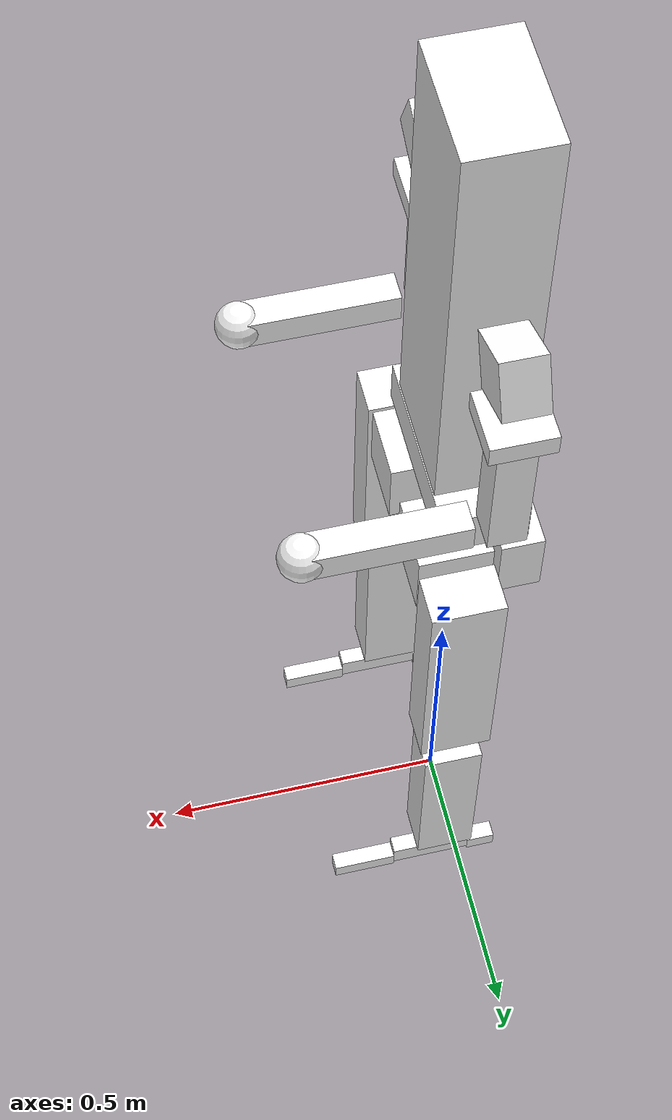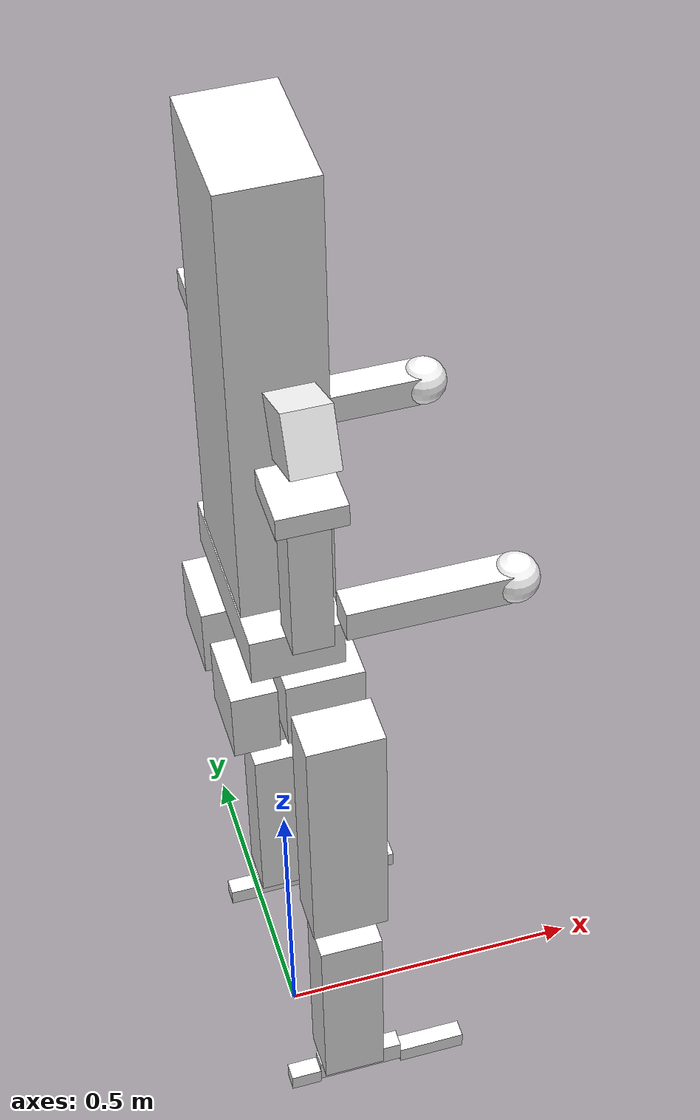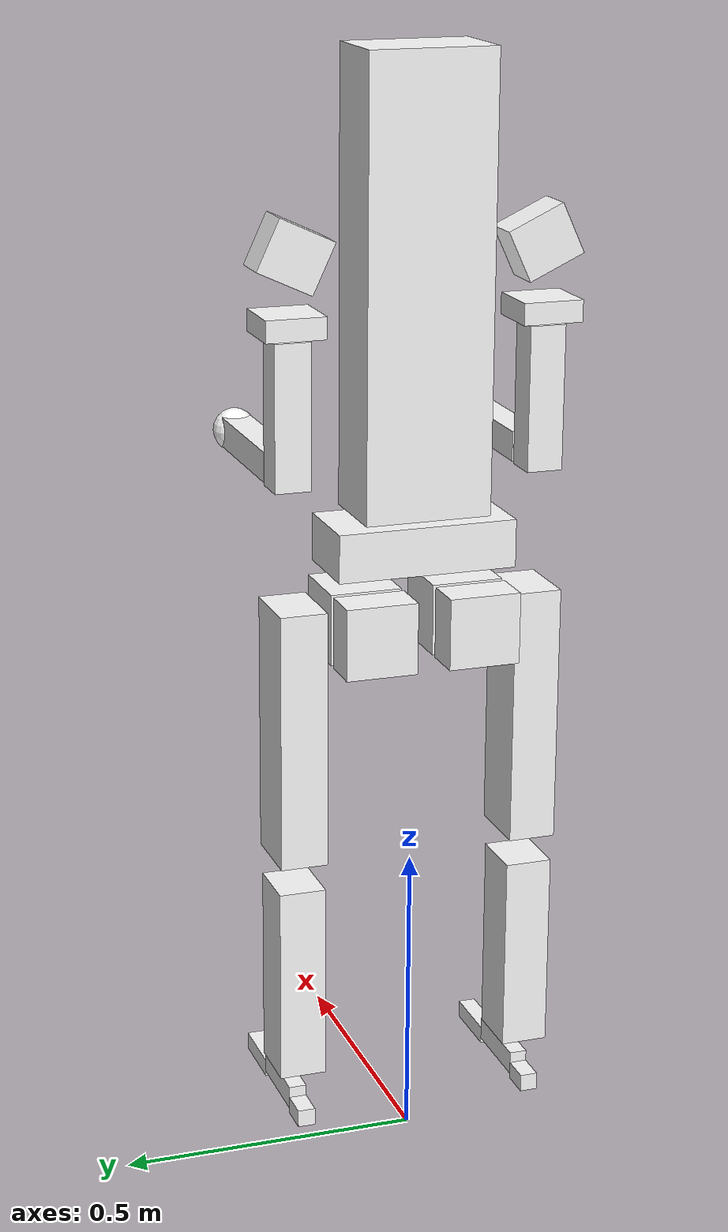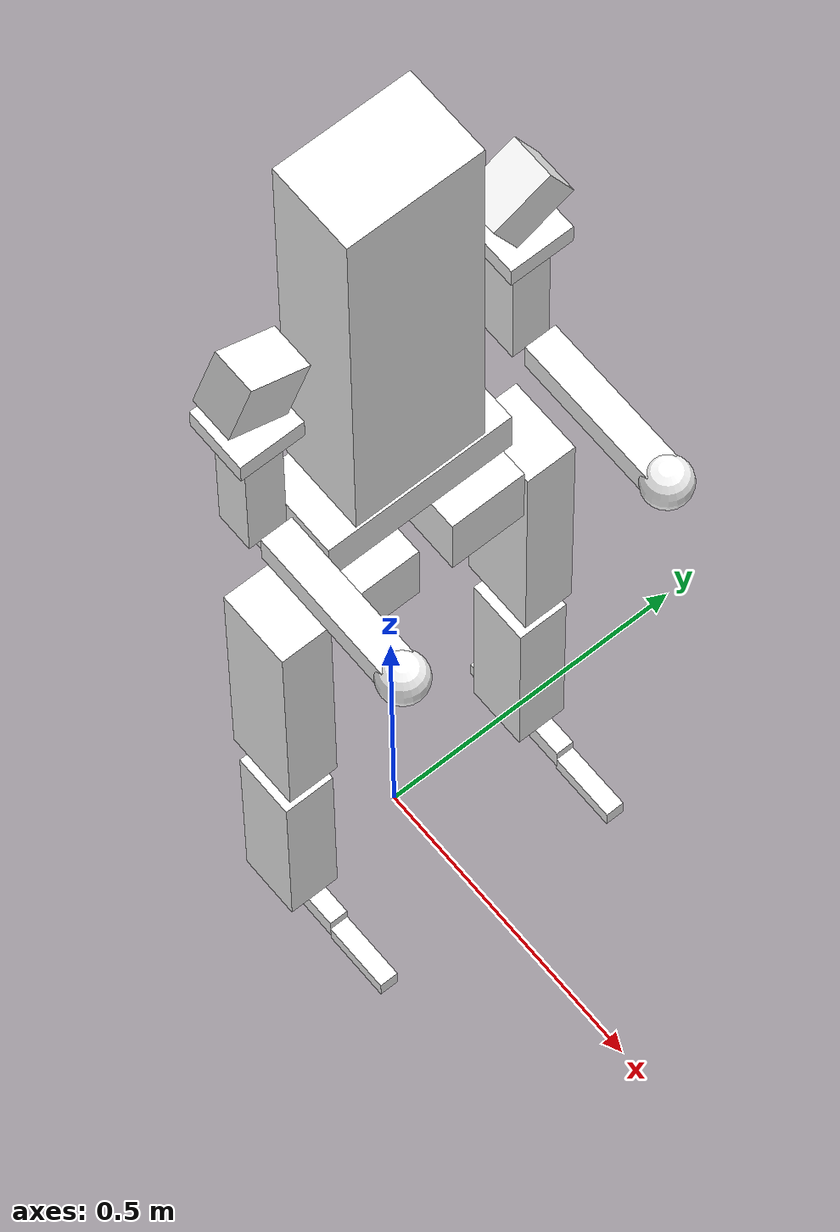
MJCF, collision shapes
<mujoco model="h1">
  <compiler angle="radian" meshdir="assets" autolimits="true"/>

  <default>
    <default class="h1">
      <geom type="mesh"/>
      <joint damping="1" armature="0.1"/>
      <default class="visual">
        <geom contype="0" conaffinity="0" group="2" material="black"/>
      </default>
      <default class="collision">
        <geom group="3" mass="0" density="0" rgba="1 1 1 0.2"/>
      </default>
      <site size="0.001" rgba="0.5 0.5 0.5 0.3" group="4"/>
    </default>
  </default>

  <asset>
    <material name="black" rgba="0.1 0.1 0.1 1"/>
    <material name="white" rgba="1 1 1 1"/>

    <mesh file="pelvis.STL"/>
    <mesh file="left_hip_yaw_link.STL"/>
    <mesh file="left_hip_roll_link.STL"/>
    <mesh file="left_hip_pitch_link.STL"/>
    <mesh file="left_knee_link.STL"/>
    <mesh file="left_ankle_link.STL"/>
    <mesh file="right_hip_yaw_link.STL"/>
    <mesh file="right_hip_roll_link.STL"/>
    <mesh file="right_hip_pitch_link.STL"/>
    <mesh file="right_knee_link.STL"/>
    <mesh file="right_ankle_link.STL"/>
    <mesh file="torso_link.STL"/>
    <mesh file="left_shoulder_pitch_link.STL"/>
    <mesh file="left_shoulder_roll_link.STL"/>
    <mesh file="left_shoulder_yaw_link.STL"/>
    <mesh file="left_elbow_link_ball_hand.STL"/>
    <mesh file="right_shoulder_pitch_link.STL"/>
    <mesh file="right_shoulder_roll_link.STL"/>
    <mesh file="right_shoulder_yaw_link.STL"/>
    <mesh file="right_elbow_link_ball_hand.STL"/>
    <mesh file="logo_link.STL"/>
  </asset>

  <worldbody>
    <body name="pelvis" pos="0 0 1.1" childclass="h1">
      <inertial pos="-0.0002 4e-05 -0.04522" quat="0.498303 0.499454 -0.500496 0.501741" mass="5.39"
        diaginertia="0.0490211 0.0445821 0.00824619"/>
      <freejoint/>
      <geom class="visual" mesh="pelvis"/>
      <geom name="pelvis_collision" pos="0 0 -0.04" type="box" size="0.07 0.15 0.04" class="collision"/>
      <body name="left_hip_yaw_link" pos="0 0.0875 -0.1742">
        <inertial pos="-0.04923 0.0001 0.0072" quat="0.69699 0.219193 0.233287 0.641667" mass="2.244"
          diaginertia="0.00304494 0.00296885 0.00189201"/>
        <joint name="left_hip_yaw_joint" axis="0 0 1" range="-0.43 0.43"/>
        <geom class="visual" mesh="left_hip_yaw_link"/>
        <geom name="left_hip_yaw_link_collision" size="0.035 0.06 0.06" pos="-0.067 0 0" type="box" class="collision"/>
        <body name="left_hip_roll_link" pos="0.039468 0 0">
          <inertial pos="-0.0058 -0.00319 -9e-05" quat="0.0438242 0.70721 -0.0729075 0.701867" mass="2.232"
            diaginertia="0.00243264 0.00225325 0.00205492"/>
          <joint name="left_hip_roll_joint" axis="1 0 0" range="-0.43 0.43"/>
          <geom class="visual" mesh="left_hip_roll_link"/>
          <geom name="left_hip_roll_link_collision" size="0.06 0.06 0.06" type="box" class="collision"/>
          <body name="left_hip_pitch_link" pos="0 0.11536 0">
            <inertial pos="0.00746 -0.02346 -0.08193" quat="0.979828 0.0513522 -0.0169854 -0.192382" mass="4.152"
              diaginertia="0.0829503 0.0821457 0.00510909"/>
            <joint name="left_hip_pitch_joint" axis="0 1 0" range="-3.14 2.53"/>
            <geom class="visual" mesh="left_hip_pitch_link"/>
            <geom name="left_hip_pitch_link_collision" pos="0 -0.01 -0.19" size="0.06 0.04 0.22" type="box" class="collision"/>
            <body name="left_knee_link" pos="0 0 -0.4">
              <inertial pos="-0.00136 -0.00512 -0.1384" quat="0.626132 -0.034227 -0.0416277 0.777852" mass="1.721"
                diaginertia="0.0125237 0.0123104 0.0019428"/>
              <joint name="left_knee_joint" axis="0 1 0" range="-0.26 2.05"/>
              <geom class="visual" mesh="left_knee_link"/>
              <geom name="left_knee_link_collision" pos="0 -0.01 -0.23" size="0.05 0.04 0.17" type="box" class="collision"/>
              <body name="left_ankle_link" pos="0 0 -0.4">
                <inertial pos="0.048568 0 -0.045609" quat="0.489385 0.510394 0.510394 0.489385" mass="0.552448"
                  diaginertia="0.00362 0.00355701 0.000149987"/>
                <joint name="left_ankle_joint" axis="0 1 0" range="-0.87 0.52"/>
                <geom class="visual" mesh="left_ankle_link"/>
                <geom name="left_ankle_link_collision_1" pos="0.145 0 -0.0538" size="0.055 0.0148 0.015" type="box" class="collision"/>
                <geom name="left_ankle_link_collision_2" pos="0.02015 0 -0.04" size="0.06985 0.0148 0.02" type="box" class="collision"/>
                <geom name="left_ankle_link_collision_3" pos="-0.0747 0 -0.0538" size="0.025 0.0148 0.015" type="box" class="collision"/>
              </body>
            </body>
          </body>
        </body>
      </body>
      <body name="right_hip_yaw_link" pos="0 -0.0875 -0.1742">
        <inertial pos="-0.04923 -0.0001 0.0072" quat="0.641667 0.233287 0.219193 0.69699" mass="2.244"
          diaginertia="0.00304494 0.00296885 0.00189201"/>
        <joint name="right_hip_yaw_joint" axis="0 0 1" range="-0.43 0.43"/>
        <geom class="visual" mesh="right_hip_yaw_link"/>
        <geom name="right_hip_yaw_link_collision" size="0.035 0.06 0.06" pos="-0.067 0 0" type="box" class="collision"/>
        <body name="right_hip_roll_link" pos="0.039468 0 0">
          <inertial pos="-0.0058 0.00319 -9e-05" quat="-0.0438242 0.70721 0.0729075 0.701867" mass="2.232"
            diaginertia="0.00243264 0.00225325 0.00205492"/>
          <joint name="right_hip_roll_joint" axis="1 0 0" range="-0.43 0.43"/>
          <geom class="visual" mesh="right_hip_roll_link"/>
          <geom name="right_hip_roll_link_collision" size="0.06 0.06 0.06" type="box" class="collision"/>
          <body name="right_hip_pitch_link" pos="0 -0.11536 0">
            <inertial pos="0.00746 0.02346 -0.08193" quat="0.979828 -0.0513522 -0.0169854 0.192382" mass="4.152"
              diaginertia="0.0829503 0.0821457 0.00510909"/>
            <joint name="right_hip_pitch_joint" axis="0 1 0" range="-3.14 2.53"/>
            <geom class="visual" mesh="right_hip_pitch_link"/>
            <geom name="right_hip_pitch_link_collision" pos="0 -0.01 -0.19" size="0.06 0.04 0.22" type="box" class="collision"/>
            <body name="right_knee_link" pos="0 0 -0.4">
              <inertial pos="-0.00136 0.00512 -0.1384" quat="0.777852 -0.0416277 -0.034227 0.626132" mass="1.721"
                diaginertia="0.0125237 0.0123104 0.0019428"/>
              <joint name="right_knee_joint" axis="0 1 0" range="-0.26 2.05"/>
              <geom class="visual" mesh="right_knee_link"/>
              <geom name="right_knee_link_collision" pos="0 -0.01 -0.23" size="0.05 0.04 0.17" type="box" class="collision"/>
              <body name="right_ankle_link" pos="0 0 -0.4">
                <inertial pos="0.048568 0 -0.045609" quat="0.489385 0.510394 0.510394 0.489385" mass="0.552448"
                  diaginertia="0.00362 0.00355701 0.000149987"/>
                <joint name="right_ankle_joint" axis="0 1 0" range="-0.87 0.52"/>
                <geom class="visual" mesh="right_ankle_link"/>
                <geom name="right_ankle_link_collision_1" pos="0.145 0 -0.0538" size="0.055 0.0148 0.015" type="box" class="collision"/>
                <geom name="right_ankle_link_collision_2" pos="0.02015 0 -0.04" size="0.06985 0.0148 0.02" type="box" class="collision"/>
                <geom name="right_ankle_link_collision_3" pos="-0.0747 0 -0.0538" size="0.025 0.0148 0.015" type="box" class="collision"/>
              </body>
            </body>
          </body>
        </body>
      </body>
      <body name="torso_link">
        <inertial pos="0.000489 0.002797 0.20484" quat="0.999989 -0.00130808 -0.00282289 -0.00349105" mass="17.789"
          diaginertia="0.487315 0.409628 0.127837"/>
        <joint name="torso_joint" axis="0 0 1" range="-2.35 2.35"/>
        <geom class="visual" mesh="torso_link"/>
        <geom class="visual" material="white" mesh="logo_link"/>
        <geom name="torso_link_collision" pos="0 0 0.38" size="0.07 0.105 0.37" type="box" class="collision"/>
        <site name="imu" size="0.01" pos="-0.04452 -0.01891 0.27756"/>
        <body name="left_shoulder_pitch_link" pos="0.0055 0.15535 0.42999" quat="0.976296 0.216438 0 0">
          <inertial pos="0.005045 0.053657 -0.015715" quat="0.814858 0.579236 -0.0201072 -0.00936488" mass="1.033"
            diaginertia="0.00129936 0.000987113 0.000858198"/>
          <joint name="left_shoulder_pitch_joint" axis="0 1 0" range="-2.87 2.87"/>
          <geom class="visual" mesh="left_shoulder_pitch_link"/>
          <geom name="left_shoulder_pitch_link_collision" pos="0 0.05 -0.015" size="0.035 0.05 0.045" type="box" class="collision"/>
          <body name="left_shoulder_roll_link" pos="-0.0055 0.0565 -0.0165" quat="0.976296 -0.216438 0 0">
            <inertial pos="0.000679 0.00115 -0.094076" quat="0.732491 0.00917179 0.0766656 0.676384" mass="0.793"
              diaginertia="0.00170388 0.00158256 0.00100336"/>
            <joint name="left_shoulder_roll_joint" axis="1 0 0" range="-0.34 3.11"/>
            <geom class="visual" mesh="left_shoulder_roll_link"/>
            <geom name="left_shoulder_roll_link_collision" pos="0 0 -0.11" size="0.05 0.05 0.018" type="box" class="collision"/>
            <body name="left_shoulder_yaw_link" pos="0 0 -0.1343">
              <inertial pos="0.01365 0.002767 -0.16266" quat="0.703042 -0.0331229 -0.0473362 0.708798" mass="0.839"
                diaginertia="0.00408038 0.00370367 0.000622687"/>
              <joint name="left_shoulder_yaw_joint" axis="0 0 1" range="-1.3 4.45"/>
              <geom class="visual" mesh="left_shoulder_yaw_link"/>
              <geom name="left_shoulder_yaw_link_collision" pos="0 0 -0.12" size="0.03 0.03 0.12" type="box" class="collision"/>
              <body name="left_elbow_link_ball_hand" pos="0.0185 0 -0.198">
                <inertial pos="0.15908 -0.000144 -0.015776" quat="0.0765232 0.720327 0.0853116 0.684102" mass="0.669"
                  diaginertia="0.00601829 0.00600579 0.000408305"/>
                <joint name="left_elbow_joint" axis="0 1 0" range="-1.25 2.61"/>
                <geom class="visual" mesh="left_elbow_link_ball_hand"/>
                <geom name="left_elbow_link_ball_hand_collision_1" pos="0.15 0 -0.018" size="0.12 0.025 0.025" type="box" class="collision"/>
                <geom name="left_elbow_link_ball_hand_collision_2" pos="0.28 0 -0.018" size="0.0365" type="sphere" class="collision"/>
              </body>
            </body>
          </body>
        </body>
        <body name="right_shoulder_pitch_link" pos="0.0055 -0.15535 0.42999" quat="0.976296 -0.216438 0 0">
          <inertial pos="0.005045 -0.053657 -0.015715" quat="0.579236 0.814858 0.00936488 0.0201072" mass="1.033"
            diaginertia="0.00129936 0.000987113 0.000858198"/>
          <joint name="right_shoulder_pitch_joint" axis="0 1 0" range="-2.87 2.87"/>
          <geom class="visual" mesh="right_shoulder_pitch_link"/>
          <geom name="right_shoulder_pitch_link_collision" pos="0 -0.05 -0.015" size="0.035 0.05 0.045" type="box" class="collision"/>
          <body name="right_shoulder_roll_link" pos="-0.0055 -0.0565 -0.0165" quat="0.976296 0.216438 0 0">
            <inertial pos="0.000679 -0.00115 -0.094076" quat="0.676384 0.0766656 0.00917179 0.732491" mass="0.793"
              diaginertia="0.00170388 0.00158256 0.00100336"/>
            <joint name="right_shoulder_roll_joint" axis="1 0 0" range="-3.11 0.34"/>
            <geom class="visual" mesh="right_shoulder_roll_link"/>
            <geom name="right_shoulder_roll_link_collision" pos="0 0 -0.11" size="0.05 0.05 0.018" type="box" class="collision"/>
            <body name="right_shoulder_yaw_link" pos="0 0 -0.1343">
              <inertial pos="0.01365 -0.002767 -0.16266" quat="0.708798 -0.0473362 -0.0331229 0.703042" mass="0.839"
                diaginertia="0.00408038 0.00370367 0.000622687"/>
              <joint name="right_shoulder_yaw_joint" axis="0 0 1" range="-4.45 1.3"/>
              <geom class="visual" mesh="right_shoulder_yaw_link"/>
              <geom name="right_shoulder_yaw_link_collision" pos="0 0 -0.12" size="0.03 0.03 0.12" type="box" class="collision"/>
              <body name="right_elbow_link_ball_hand" pos="0.0185 0 -0.198">
                <inertial pos="0.15908 0.000144 -0.015776" quat="-0.0765232 0.720327 -0.0853116 0.684102" mass="0.669"
                  diaginertia="0.00601829 0.00600579 0.000408305"/>
                <joint name="right_elbow_joint" axis="0 1 0" range="-1.25 2.61"/>
                <geom class="visual" mesh="right_elbow_link_ball_hand"/>
                <geom name="right_elbow_link_ball_hand_collision_1" pos="0.15 0 -0.018" size="0.12 0.025 0.025" type="box" class="collision"/>
                <geom name="right_elbow_link_ball_hand_collision_2" pos="0.28 0 -0.018" size="0.0365" type="sphere" class="collision"/>
              </body>
            </body>
          </body>
        </body>
      </body>
    </body>
    <body name="not_use_body" pos="0 0 20">
      <inertial pos="0.0 0.0 0.0" mass="1e-01"
      diaginertia="1e-01 1e-01 1e-01"/>
      <joint name="not_use_joint"/>
    </body>
  </worldbody>

<actuator>
    <motor class="h1" name="right_hip_roll_joint" joint="right_hip_roll_joint" ctrlrange="-200 200"/>
    <motor class="h1" name="right_hip_pitch_joint" joint="right_hip_pitch_joint" ctrlrange="-200 200"/>
    <motor class="h1" name="right_knee_joint" joint="right_knee_joint" ctrlrange="-300 300"/>

    <motor class="h1" name="left_hip_roll_joint" joint="left_hip_roll_joint" ctrlrange="-200 200"/>
    <motor class="h1" name="left_hip_pitch_joint" joint="left_hip_pitch_joint" ctrlrange="-200 200"/>
    <motor class="h1" name="left_knee_joint" joint="left_knee_joint" ctrlrange="-300 300"/>

    <motor class="h1" name="torso_joint" joint="torso_joint" ctrlrange="-200 200"/>
    <motor class="h1" name="left_hip_yaw_joint" joint="left_hip_yaw_joint" ctrlrange="-200 200"/>
    <motor class="h1" name="right_hip_yaw_joint" joint="right_hip_yaw_joint" ctrlrange="-200 200"/>

    <motor class="h1" name="not_use_joint" joint="not_use_joint" />

    <motor class="h1" name="left_ankle_joint" joint="left_ankle_joint" ctrlrange="-40 40"/>
    <motor class="h1" name="right_ankle_joint" joint="right_ankle_joint" ctrlrange="-40 40"/>

    <motor class="h1" name="right_shoulder_pitch_joint" joint="right_shoulder_pitch_joint" ctrlrange="-40 40"/>
    <motor class="h1" name="right_shoulder_roll_joint" joint="right_shoulder_roll_joint" ctrlrange="-40 40"/>
    <motor class="h1" name="right_shoulder_yaw_joint" joint="right_shoulder_yaw_joint" ctrlrange="-18 18"/>
    <motor class="h1" name="right_elbow_joint" joint="right_elbow_joint" ctrlrange="-18 18"/>

    <motor class="h1" name="left_shoulder_pitch_joint" joint="left_shoulder_pitch_joint" ctrlrange="-40 40"/>
    <motor class="h1" name="left_shoulder_roll_joint" joint="left_shoulder_roll_joint" ctrlrange="-40 40"/>
    <motor class="h1" name="left_shoulder_yaw_joint" joint="left_shoulder_yaw_joint" ctrlrange="-18 18"/>
    <motor class="h1" name="left_elbow_joint" joint="left_elbow_joint" ctrlrange="-18 18"/>
  </actuator>

  <sensor>
    <jointpos name="right_hip_roll_pos" joint="right_hip_roll_joint"/>
    <jointpos name="right_hip_pitch_pos" joint="right_hip_pitch_joint"/>
    <jointpos name="right_knee_pos" joint="right_knee_joint"/>
    <jointpos name="left_hip_roll_pos" joint="left_hip_roll_joint"/>
    <jointpos name="left_hip_pitch_pos" joint="left_hip_pitch_joint"/>
    <jointpos name="left_knee_pos" joint="left_knee_joint"/>
    <jointpos name="torso_pos" joint="torso_joint"/>
    <jointpos name="left_hip_yaw_pos" joint="left_hip_yaw_joint"/>
    <jointpos name="right_hip_yaw_pos" joint="right_hip_yaw_joint"/>
    <jointpos name="not_use_pos" joint="not_use_joint"/>
    <jointpos name="left_ankle_pos" joint="left_ankle_joint"/>
    <jointpos name="right_ankle_pos" joint="right_ankle_joint"/>
    <jointpos name="right_shoulder_pitch_pos" joint="right_shoulder_pitch_joint"/>
    <jointpos name="right_shoulder_roll_pos" joint="right_shoulder_roll_joint"/>
    <jointpos name="right_shoulder_yaw_pos" joint="right_shoulder_yaw_joint"/>
    <jointpos name="right_elbow_pos" joint="right_elbow_joint"/>
    <jointpos name="left_shoulder_pitch_pos" joint="left_shoulder_pitch_joint"/>
    <jointpos name="left_shoulder_roll_pos" joint="left_shoulder_roll_joint"/>
    <jointpos name="left_shoulder_yaw_pos" joint="left_shoulder_yaw_joint"/>
    <jointpos name="left_elbow_pos" joint="left_elbow_joint"/>

    <jointvel name="right_hip_roll_vel" joint="right_hip_roll_joint"/>
    <jointvel name="right_hip_pitch_vel" joint="right_hip_pitch_joint"/>
    <jointvel name="right_knee_vel" joint="right_knee_joint"/>
    <jointvel name="left_hip_roll_vel" joint="left_hip_roll_joint"/>
    <jointvel name="left_hip_pitch_vel" joint="left_hip_pitch_joint"/>
    <jointvel name="left_knee_vel" joint="left_knee_joint"/>
    <jointvel name="torso_vel" joint="torso_joint"/>
    <jointvel name="left_hip_yaw_vel" joint="left_hip_yaw_joint"/>
    <jointvel name="right_hip_yaw_vel" joint="right_hip_yaw_joint"/>
    <jointvel name="not_use_vel" joint="not_use_joint"/>
    <jointvel name="left_ankle_vel" joint="left_ankle_joint"/>
    <jointvel name="right_ankle_vel" joint="right_ankle_joint"/>
    <jointvel name="right_shoulder_pitch_vel" joint="right_shoulder_pitch_joint"/>
    <jointvel name="right_shoulder_roll_vel" joint="right_shoulder_roll_joint"/>
    <jointvel name="right_shoulder_yaw_vel" joint="right_shoulder_yaw_joint"/>
    <jointvel name="right_elbow_vel" joint="right_elbow_joint"/>
    <jointvel name="left_shoulder_pitch_vel" joint="left_shoulder_pitch_joint"/>
    <jointvel name="left_shoulder_roll_vel" joint="left_shoulder_roll_joint"/>
    <jointvel name="left_shoulder_yaw_vel" joint="left_shoulder_yaw_joint"/>
    <jointvel name="left_elbow_vel" joint="left_elbow_joint"/>

    <jointactuatorfrc name="right_hip_roll_torque" joint="right_hip_roll_joint"/>
    <jointactuatorfrc name="right_hip_pitch_torque" joint="right_hip_pitch_joint"/>
    <jointactuatorfrc name="right_knee_torque" joint="right_knee_joint"/>
    <jointactuatorfrc name="left_hip_roll_torque" joint="left_hip_roll_joint"/>
    <jointactuatorfrc name="left_hip_pitch_torque" joint="left_hip_pitch_joint"/>
    <jointactuatorfrc name="left_knee_torque" joint="left_knee_joint"/>
    <jointactuatorfrc name="torso_torque" joint="torso_joint"/>
    <jointactuatorfrc name="left_hip_yaw_torque" joint="left_hip_yaw_joint"/>
    <jointactuatorfrc name="right_hip_yaw_torque" joint="right_hip_yaw_joint"/>
    <jointactuatorfrc name="not_use_torque" joint="not_use_joint"/>
    <jointactuatorfrc name="left_ankle_torque" joint="left_ankle_joint"/>
    <jointactuatorfrc name="right_ankle_torque" joint="right_ankle_joint"/>
    <jointactuatorfrc name="right_shoulder_pitch_torque" joint="right_shoulder_pitch_joint"/>
    <jointactuatorfrc name="right_shoulder_roll_torque" joint="right_shoulder_roll_joint"/>
    <jointactuatorfrc name="right_shoulder_yaw_torque" joint="right_shoulder_yaw_joint"/>
    <jointactuatorfrc name="right_elbow_torque" joint="right_elbow_joint"/>
    <jointactuatorfrc name="left_shoulder_pitch_torque" joint="left_shoulder_pitch_joint"/>
    <jointactuatorfrc name="left_shoulder_roll_torque" joint="left_shoulder_roll_joint"/>
    <jointactuatorfrc name="left_shoulder_yaw_torque" joint="left_shoulder_yaw_joint"/>
    <jointactuatorfrc name="left_elbow_torque" joint="left_elbow_joint"/>

    <framequat name="imu_quat" objtype="site" objname="imu" />
    <gyro name="imu_gyro" site="imu" />
    <accelerometer name="imu_acc" site="imu" />

    <framepos name="frame_pos" objtype="site" objname="imu" />
    <framelinvel name="frame_vel" objtype="site" objname="imu" />
  </sensor>
</mujoco>
